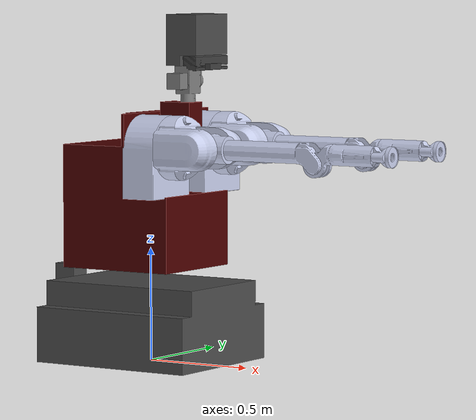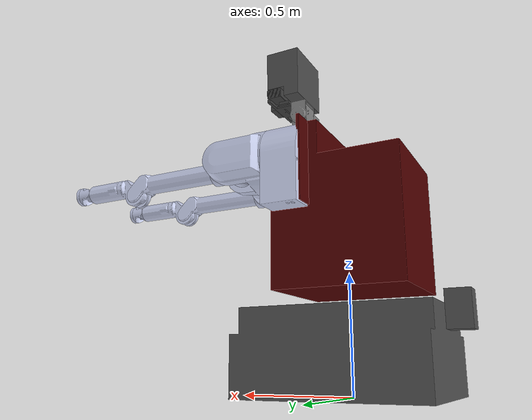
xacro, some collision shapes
<robot xmlns:xacro="http://www.ros.org/wiki/xacro" name="herb">

  <xacro:include filename="herb_base.urdf.xacro"/>
  <xacro:include filename="bh280.urdf.xacro"/>
  <xacro:include filename="bh282.urdf.xacro"/>
  <xacro:include filename="wsg50.urdf.xacro"/>
  <xacro:include filename="wam.urdf.xacro"/>
  <xacro:include filename="fixed_transforms.urdf.xacro"/>

  <!-- 7 DOF Barrett WAM equipped with the Barrett force/torque sensor and
       optionally the BH-280 BarrettHand end-effector. -->
  <xacro:macro name="herb_manipulator"
               params="prefix:=${prefix} bh280:=false bh282:=false wsg50:=false">
    <xacro:wam prefix="${prefix}"/>

    <xacro:if value="${bh280}">
      <xacro:bh280 prefix="${prefix}"/>
    </xacro:if>

    <xacro:if value="${bh282}">
      <xacro:bh282 prefix="${prefix}"/>
    </xacro:if>

    <xacro:if value="${wsg50}">
      <xacro:wsg50 prefix="${prefix}"/>
    </xacro:if>

    <link name="${prefix}/force_torque">
      <inertial>
        <origin xyz="0.0002 0 0.0054" rpy="0 0 0"/>
        <mass value="0.133278"/>
        <inertia ixx="0.00007551" ixy="-0.0000001199" ixz="-0.0000000700"
                 iyy= "0.0000750800" iyz="-0.0000000537"
                 izz= "0.0001462000"/>
      </inertial>
    </link>
    <joint name="${prefix}/force_torque_mount" type="fixed">
      <!-- difference between URDF wam7 frame and Barrett's wam7 frame is 0.06m -->
      <origin xyz="0 0 0.06" rpy="0 0 0"/>
      <parent link="${prefix}/wam7"/>
      <child link="${prefix}/force_torque"/>
    </joint>

    <!-- TODO: where should force/torque thickness go if no hand? -->
    <xacro:if value="${bh280}">
      <joint name="${prefix}/hand_mount" type="fixed">
        <!-- The force/torque sensor is 12 mm thick. -->
        <origin xyz="0 0 0.012" rpy="0 0 ${pi/2}"/>
        <parent link="${prefix}/force_torque"/>
        <child link="${prefix}/hand_base"/>
      </joint>
    </xacro:if>
    <xacro:if value="${bh282}">
      <joint name="${prefix}/hand_mount" type="fixed">
        <!-- The force/torque sensor is 12 mm thick. -->
        <origin xyz="0 0 0.012" rpy="0 0 ${pi/2}"/>
        <parent link="${prefix}/force_torque"/>
        <child link="${prefix}/hand_base"/>
      </joint>
    </xacro:if>
  <xacro:if value="${wsg50}">
      <joint name="${prefix}/hand_mount" type="fixed">
        <!-- The force/torque sensor is 12 mm thick. -->
        <origin xyz="0 0 0.012" rpy="0 0 ${pi/2}"/>
        <parent link="${prefix}/force_torque"/>
        <child link="${prefix}/hand_base"/>
      </joint>
    </xacro:if>
  </xacro:macro>

  <!-- hand arguments should all default to false to make argument passing sane -->
  <xacro:arg name="left_bh280" default="false"/>
  <xacro:arg name="right_bh280" default="false"/>
  <xacro:arg name="left_bh282" default="false"/>
  <xacro:arg name="right_bh282" default="false"/>
  <xacro:arg name="left_wsg50" default="false"/>
  <xacro:arg name="right_wsg50" default="false"/>

  <xacro:herb_manipulator prefix="/left" bh280="$(arg left_bh280)" bh282="$(arg left_bh282)" wsg50="$(arg left_wsg50)"/>
  <xacro:herb_manipulator prefix="/right" bh280="$(arg right_bh280)" bh282="$(arg right_bh282)" wsg50="$(arg right_wsg50)"/>
  <xacro:herb_base prefix=""/>

  <joint name="/left/wam_mount" type="fixed">
    <origin xyz="-0.355924 0.005376 -0.357421" rpy="0 -1.57075 -1.57075"/>
    <parent link="herb_frame"/>
    <child link="/left/wam_base"/>
  </joint>

  <joint name="/right/wam_mount" type="fixed">
    <origin xyz="0.050805 0.005376 -0.357421" rpy="0 -1.57075 -1.57075"/>
    <parent link="herb_frame"/>
    <child link="/right/wam_base"/>
  </joint>

  <xacro:fixed_transforms/>
</robot>

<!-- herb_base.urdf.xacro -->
<robot xmlns:xacro="http://www.ros.org/wiki/xacro" name="herb_base">
  <xacro:macro name="herb_base" params="prefix">
    <link name="base_link">
      <inertial>
        <origin
            xyz="-0.074086 0 -0.051244"
            rpy="0 0 0" />
        <mass
            value="0.1" />
        <inertia
            ixx="1"
            ixy="0"
            ixz="0"
            iyy="1"
            iyz="0"
            izz="1" />
      </inertial>
    </link>
    <joint
        name="root_to_neobotix"
        type="fixed">
      <origin
          xyz="0 0 0"
          rpy="0 0 1.57075" />
      <parent
          link="base_link" />
      <child
          link="neobotix_base" />
    </joint>
    <!--TODO: Confirm the inertial values when deemed important/necessary-->
    <link
        name="neobotix_base">
      <!--check inertias and mass-->
      <inertial>
        <origin
            xyz="0 0 0"
            rpy="0 0 0" />
        <mass
            value="80" />
        <inertia
            ixx="9.25557"
            ixy="0.00548"
            ixz="0.00573"
            iyy="7.60171"
            iyz="1.02901"
            izz="9.76036" />
      </inertial>
      <visual>
        <origin
            xyz="0 0 0"
            rpy="0 0 0"/>
        <geometry>
          <mesh
              filename="package://herb_description/meshes/base/herb_neobotix_base.STL" />
        </geometry>
        <material
            name="">
          <color
              rgba="0.3 0.3 0.3 1" />
        </material>
      </visual>
      <collision>
        <origin
            xyz="0 0 0"
            rpy="1.57075 0 1.57075" />
        <geometry>
          <mesh
              filename="package://herb_description/meshes/base/herb_neobotix_base_collision.STL" />
        </geometry>
      </collision>
    </link>
    <joint
        name="neobotix_to_frame"
        type="fixed">
      <origin
          xyz="0 -0.074086 1.101244"
          rpy="0 0 3.141592" />
      <parent
          link="neobotix_base" />
      <child
          link="herb_frame" />
    </joint>
    <link
        name="herb_frame">
      <!--check inertias and mass-->
      <inertial>
        <origin
            xyz="0 0 0"
            rpy="0 0 0" />
        <mass
            value="106.25" />
        <inertia
            ixx="22.3955"
            ixy="-0.2746"
            ixz="-0.0999"
            iyy="5.9126"
            iyz="5.1995"
            izz="20.4410" />
      </inertial>
      <visual>
        <origin
            xyz="0 0 0"
            rpy="1.57075 0 3.141592" />
        <geometry>
          <mesh
              filename="package://herb_description/meshes/base/herb_frame.STL" />
        </geometry>
        <material
            name="">
          <color
              rgba="0.3 0 0 1" />
        </material>
      </visual>
      <collision>
        <origin
            xyz="0 0 0"
            rpy="1.57075 0 -1.57075" />
        <geometry>
          <mesh
              filename="package://herb_description/meshes/base/herb_frame_collision.STL" />
        </geometry>
      </collision>
    </link>

    <link
        name="neck_pan">
      <!--check inertias and mass-->
      <inertial>
        <origin
            xyz="0 0.124900 0.050806"
            rpy="0 0 0" />
        <mass
            value="0.81" />
        <inertia
            ixx="0.00694"
            ixy="0"
            ixz="0"
            iyy="0.00713"
            iyz="0"
            izz="0.00081" />
      </inertial>
      <visual>
        <origin
            xyz="0 0 0"
            rpy="0 0 0" />
        <geometry>
          <mesh
              filename="package://herb_description/meshes/head/herb_neck_pan.STL" />
        </geometry>
        <material
            name="">
          <color
              rgba="0.5 0.5 0.5 1" />
        </material>
      </visual>
      <collision>
        <origin
            xyz="0 0 0"
            rpy="-1.57075 0 0" />
        <geometry>
          <mesh
              filename="package://herb_description/meshes/head/herb_neck_pan_collision.STL" />
        </geometry>
      </collision>
    </link>
    <joint
        name="frame_to_neck_pan"
        type="revolute">
      <axis
          xyz="0 0 -1" />
      <!--pan (swivel) velocity limit of 360 degrees/s-->
      <limit
          effort="2.0"
          lower="-0.78539"
          upper="0.78539"
          velocity="6.28318" />
      <origin
          xyz="0 0.124900 0.050806"
          rpy="3.141592 0 0" />
      <parent
          link="herb_frame" />
      <child
          link="neck_pan" />
    </joint>
    <link
        name="neck_tilt" >
      <inertial>
        <origin
            xyz="0 0.124900 0.142633"
            rpy="0 0 0" />
        <mass
            value="0.32" />
        <inertia
            ixx="0.00046"
            ixy="0"
            ixz="-0.00002"
            iyy="0.00142"
            iyz="0"
            izz="0.00120" />
      </inertial>
      <visual>
        <origin
            xyz="0 0 0"
            rpy="0 0 0" />
        <geometry>
          <mesh
              filename="package://herb_description/meshes/head/herb_neck_tilt.STL" />
        </geometry>
        <material
            name="">
          <color
              rgba="0.5 0.5 0.5 1" />
        </material>
      </visual>
      <collision>
        <origin
            xyz="0 0 0"
            rpy="-1.57075 0 3.141592" />
        <geometry>
          <mesh
              filename="package://herb_description/meshes/head/herb_neck_tilt_collision.STL" />
        </geometry>
      </collision>
    </link>
    <joint
        name="neck_pan_to_neck_tilt"
        type="revolute">
      <axis
          xyz="-1 0 0" />
      <!--tilt velocity limit of 240 degrees/s-->
      <limit
          effort="12.0"
          lower="-0.78539"
          upper="0.78539"
          velocity="4.18879" />
      <origin
          xyz="0 0 -0.0919"
          rpy="0 0 0" />
      <parent
          link="neck_pan" />
      <child
          link="neck_tilt" />
    </joint>
    <link
        name="crl_head">
      <!--check inertias and mass-->
      <inertial>
        <origin
            xyz="0.001 0.181699 0.377811"
            rpy="0 0 0" />
        <mass
            value="3.01" />
        <inertia
            ixx="0.02735"
            ixy="-0.00053"
            ixz="0.00024"
            iyy="0.00962"
            iyz="-0.00521"
            izz="0.02487" />
      </inertial>
      <visual>
        <origin
            xyz="0 0 0"
            rpy="0 0 0" />
        <geometry>
          <mesh
              filename="package://herb_description/meshes/head/herb_crl_head.STL" />
        </geometry>
        <material
            name="">
          <color
              rgba="0.3 0.3 0.3 1" />
        </material>
      </visual>
      <collision>
        <origin
            xyz="-0.003895 -0.236 0.0575"
            rpy="0 3.141592 0" />
        <geometry>
          <mesh
              filename="package://herb_description/meshes/head/herb_crl_head_collision.STL" />
        </geometry>
      </collision>
    </link>
    <joint
        name="neck_tilt_to_crl_head"
        type="fixed">
      <parent
          link="neck_tilt" />
      <child
          link="crl_head" />
      <origin
          xyz="-0.003895 -0.0575 -0.236"
          rpy="-1.57075 0 0" />
    </joint>
    <link name="multisense/head">
      <inertial>
        <origin
            xyz="0 0 0"
            rpy="0 0 0" />
        <mass
            value="0.1" />
        <inertia
            ixx="1"
            ixy="0"
            ixz="0"
            iyy="1"
            iyz="0"
            izz="1" />
      </inertial>
    </link>
    <joint
        name="crl_head_to_multisenseframe"
        type="fixed">
      <parent
          link="crl_head" />
      <child
          link="multisense/head" />
      <origin
          xyz="0 -0.086 -0.056"
          rpy="0 1.5707 1.5707" />
    </joint>
    <link
        name="head/kinect2_link">
      <inertial>
        <origin
            xyz="0.001778 0.164443 0.209049"
            rpy="0 0 0" />
        <mass
            value="0.63"/>
        <inertia
            ixx="0.00272"
            ixy="0.00036"
            ixz="-0.00002"
            iyy="0.00258"
            iyz="-0.00001"
            izz="0.00145" />
      </inertial>
      <visual>
        <origin
            xyz="0 0 0"
            rpy="0 0 0" />
        <geometry>
          <mesh
              filename="package://herb_description/meshes/head/herb_kinect.STL" />
        </geometry>
        <material
            name="">
          <color
              rgba="0.25 0.25 0.25 1" />
        </material>
      </visual>
      <collision>
        <origin
            xyz="-0.039543 -0.065 0"
            rpy="1.57075 1.57075 1.57075" />
        <geometry>
          <mesh
              filename="package://herb_description/meshes/head/herb_kinect_collision.STL" />
        </geometry>
      </collision>
    </link>
    <joint
        name="crl_head_to_kinect"
        type="fixed">
      <parent
          link="crl_head" />
      <child
          link="head/kinect2_link" />
      <origin
          xyz="-0.003895 -0.170163 0.017938"
          rpy="0 1.57075 0" />
    </joint>
    <xacro:property name="d435_cam_width" value="0.090"/>
    <xacro:property name="d435_cam_height" value="0.025"/>
    <xacro:property name="d435_cam_depth" value="0.02505"/>
    <xacro:property name="M_PI" value="3.1415926535897931" />
    <xacro:property name="d435_cam_mount_from_center_offset" value="0.0149"/>
    <xacro:property name="d435_cam_depth_py" value="0.0175"/>
    <link
      name="camera_link">
      <origin xyz="${d435_cam_mount_from_center_offset} ${-d435_cam_depth_py} 0" rpy="0 0 0"/>
      <mass value="0.79"/>
      <inertia ixx="0.003881243" ixy="0.0" ixz="0.0" iyy="0.000498940" iyz="0.0" izz="0.003879257" />
      <visual>
        <origin
          xyz="0 0 0"
          rpy="1.5707 0 1.5707" />
        <geometry>
          <mesh
            filename="package://herb_description/meshes/head/realsense.dae" />
        </geometry>
        <material name="">
          <color rgba="0.25 0.25 0.25 1" />
        </material>
      </visual>
      <collision>
        <origin xyz="0 0 0" rpy="0 0 0"/>
        <geometry>
          <box size="${d435_cam_depth} ${d435_cam_width} ${d435_cam_height}"/>
        </geometry>
      </collision>
    </link>
    <joint
      name="crl_head_to_realsense"
      type="fixed">
      <parent link="crl_head" />
      <child link="camera_link" />
      <origin
        xyz="0.008 -0.1690163 -0.0765607"
        rpy="0 1.5707 1.5707" />
    </joint>
  </xacro:macro>
</robot>

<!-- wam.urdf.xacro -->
<robot xmlns:xacro="http://www.ros.org/wiki/xacro" name="wam">
  <xacro:macro name="wam" params="prefix">
    <link name="${prefix}/wam_base">
      <visual>
        <origin xyz="0 0 0" rpy="0 0 0"/>
        <geometry>
          <mesh filename="package://herb_description/meshes/wam/wam_base.dae"/>
        </geometry>
        <material name="">
          <color rgba="0.792156862745098 0.819607843137255 0.933333333333333 1"/>
        </material>
      </visual>
      <inertial>
        <origin rpy="0 0 0" xyz="0.21556578 0.26189039 0.34533511"/>
        <mass value="9.97059584"/>
        <inertia
            ixx="0.10916849" ixy="0.00640270" ixz="0.02557874"
            iyx="0.00000000" iyy="0.18294303" iyz="0.00161433"
            izx="0.00000000" izy="0.00000000" izz="0.11760385"/>
      </inertial>
      <collision>
        <geometry><mesh filename="package://herb_description/meshes/wam/wam_base_collision.STL"/>
        </geometry>
      </collision>
    </link>
    <link name="${prefix}/wam1">
      <visual>
        <origin xyz="0 0 0" rpy="0 0 0"/>
        <geometry>
          <mesh filename="package://herb_description/meshes/wam/wam1.dae"/>
        </geometry>
        <material name="">
          <color rgba="0.792156862745098 0.819607843137255 0.933333333333333 1"/>
        </material>
      </visual>
      <inertial>
        <origin rpy="-1.570796 0 0" xyz="-0.004434 -0.000665 -0.121890"/>
        <mass value="10.76768767"/>
        <inertia
            ixx="0.13488033" ixy="-0.00213041" ixz="-0.00012485"
            iyx="0.00000000" iyy="0.11328369" iyz="0.00068555"
            izx="0.00000000" izy="0.00000000" izz="0.09046330"/>
      </inertial>
      <collision>
        <geometry>
          <mesh filename="package://herb_description/meshes/wam/wam1_collision.STL"/>
        </geometry>
      </collision>
    </link>
    <joint name="${prefix}/j1" type="revolute">
      <origin xyz="0.22 0.14 0.346" rpy="-1.1127E-16 0 0"/>
      <parent link="${prefix}/wam_base"/>
      <child link="${prefix}/wam1"/>
      <axis xyz="0 0 1"/>
      <!-- HERB's J1 joints are modified to have a +180 degree offset. -->
      <limit effort="1.8" lower="0.54159265359" upper="5.74159265359" velocity="0.75"/>
    </joint>
    <link name="${prefix}/wam2">
      <visual>
        <origin xyz="0 0 0" rpy="0 0 0"/>
        <geometry>
          <mesh filename="package://herb_description/meshes/wam/wam2.dae"/>
        </geometry>
        <material name="">
          <color rgba="0.792156862745098 0.819607843137255 0.933333333333333 1"/>
        </material>
      </visual>
      <inertial>
        <origin rpy="1.570796 0 0" xyz="-0.002370 -0.015421 0.031056"/>
        <mass value="3.87493756"/>
        <inertia
            ixx="0.02140958" ixy="0.00027172" ixz="0.00002461"
            iyx="0.00000000" iyy="0.01377875" iyz="-0.00181920"
            izx="0.00000000" izy="0.00000000" izz="0.01558906"/>
      </inertial>
      <collision>
        <geometry>
          <mesh filename="package://herb_description/meshes/wam/wam2_collision.STL"/>
        </geometry>
      </collision>
    </link>
    <joint name="${prefix}/j2" type="revolute">
      <origin xyz="0 0 0" rpy="-1.5708 -4.0281E-16 -3.9443E-31"/>
      <parent link="${prefix}/wam1"/>
      <child link="${prefix}/wam2"/>
      <axis xyz="0 0 1"/>
      <limit effort="1.8" lower="-2.00" upper="2.00" velocity="0.75"/>
    </joint>
    <link name="${prefix}/wam3">
      <visual>
        <origin xyz="0 0 0" rpy="0 0 0"/>
        <geometry>
          <mesh filename="package://herb_description/meshes/wam/wam3.dae"/>
        </geometry>
        <material name="">
          <color rgba="0.792156862745098 0.819607843137255 0.933333333333333 1"/>
        </material>
      </visual>
      <inertial>
        <origin rpy="-1.570796 0 0" xyz="0.006741 0.000033 0.342492"/>
        <mass value="1.80228141"/>
        <inertia
            ixx="0.05911077" ixy="-0.00249612" ixz="0.00000738"
            iyx="0.00000000" iyy="0.00324550"  iyz="-0.00001767"
            izx="0.00000000" izy="0.00000000"  izz="0.05927043"/>
      </inertial>
      <collision>
        <geometry>
          <mesh filename="package://herb_description/meshes/wam/wam3_collision.STL"/>
        </geometry>
      </collision>
    </link>
    <joint name="${prefix}/j3" type="revolute">
      <origin xyz="0 0 0" rpy="1.5708 -3.9443E-31 4.0281E-16"/>
      <parent link="${prefix}/wam2"/>
      <child link="${prefix}/wam3"/>
      <axis xyz="0 0 1"/>
      <limit effort="1.8" lower="-2.80" upper="2.80" velocity="2.0"/>
    </joint>
    <link name="${prefix}/wam4">
      <visual>
        <origin xyz="0 0 0" rpy="0 0 0"/>
        <geometry>
          <mesh filename="package://herb_description/meshes/wam/wam4.dae"/>
        </geometry>
        <material name="">
          <color rgba="0.792156862745098 0.819607843137255 0.933333333333333 1"/>
        </material>
      </visual>
      <inertial>
        <origin rpy="1.570796 0 0" xyz="-0.040015 -0.132717 -0.000229"/>
        <mass value="2.40016804"/>
        <inertia
            ixx="0.01491672" ixy="0.00001741" ixz="-0.00150604"
            iyx="0.00000000" iyy="0.01482922" iyz="-0.00002109"
            izx="0.00000000" izy="0.00000000" izz="0.00294463"/>
      </inertial>
      <collision>
        <geometry>
          <mesh filename="package://herb_description/meshes/wam/wam4_collision.STL"/>
        </geometry>
      </collision>
    </link>
    <joint name="${prefix}/j4" type="revolute">
      <origin xyz="0.045 0 0.55" rpy="-1.5708 0 0"/>
      <parent link="${prefix}/wam3"/>
      <child link="${prefix}/wam4"/>
      <axis xyz="0 0 1"/>
      <limit effort="1.6" lower="-0.90" upper="3.10" velocity="2.0"/>
    </joint>
    <link name="${prefix}/wam5">
      <visual>
        <origin xyz="0 0 0" rpy="0 0 0"/>
        <geometry>
          <mesh filename="package://herb_description/meshes/wam/wam5.dae"/>
        </geometry>
        <material name="">
          <color rgba="0.792156862745098 0.819607843137255 0.933333333333333 1"/>
        </material>
      </visual>
      <inertial>
        <origin rpy="-1.570796 0 0" xyz="0.000089 0.004358 0.294888"/>
        <mass value="0.12376019"/>
        <inertia
            ixx="0.00005029" ixy="0.00000020" ixz="-0.00000005"
            iyx="0.00000000" iyy="0.00007582" iyz="-0.00000359"
            izx="0.00000000" izy="0.00000000" izz="0.00006270"/>
      </inertial>
      <collision>
        <geometry>
          <mesh filename="package://herb_description/meshes/wam/wam5_collision.STL"/>
        </geometry>
      </collision>
    </link>
    <joint name="${prefix}/j5" type="revolute">
      <origin xyz="-0.045 0 0" rpy="1.5708 0 0"/>
      <parent link="${prefix}/wam4"/>
      <child link="${prefix}/wam5"/>
      <axis xyz="0 0 1"/>
      <limit effort="0.6" lower="-4.76" upper="1.24" velocity="2.5"/>
    </joint>
    <link name="${prefix}/wam6">
      <visual>
        <origin xyz="0 0 0" rpy="0 0 0"/>
        <geometry>
          <mesh filename="package://herb_description/meshes/wam/wam6.dae"/>
        </geometry>
        <material name="">
          <color rgba="0.792156862745098 0.819607843137255 0.933333333333333 1"/>
        </material>
      </visual>
      <inertial>
        <origin rpy="1.570796 0 0" xyz="-0.000123 -0.024683 -0.017032"/>
        <mass value="0.41797364"/>
        <inertia
            ixx="0.00055516" ixy="0.00000061" ixz="-0.00000074"
            iyx="0.00000000" iyy="0.00024367" iyz="-0.00004590"
            izx="0.00000000" izy="0.00000000" izz="0.00045358"/>
      </inertial>
      <collision>
        <geometry>
          <mesh filename="package://herb_description/meshes/wam/wam6_collision.STL"/>
        </geometry>
      </collision>
    </link>
    <joint name="${prefix}/j6" type="revolute">
      <origin xyz="0 0 0.3" rpy="-1.5708 0 0"/>
      <parent link="${prefix}/wam5"/>
      <child link="${prefix}/wam6"/>
      <axis xyz="0 0 1"/>
      <limit effort="0.6" lower="-1.60" upper="1.60" velocity="2.5"/>
    </joint>
    <link name="${prefix}/wam7">
      <visual>
        <origin xyz="0 0 0" rpy="0 0 0"/>
        <geometry>
          <mesh filename="package://herb_description/meshes/wam/wam7.dae"/>
        </geometry>
        <material name="">
          <color rgba="0.792156862745098 0.819607843137255 0.933333333333333 1"/>
        </material>
      </visual>
      <inertial>
        <origin rpy="0 0 0" xyz="-0.000080 0.000163 0.056764"/>
        <mass value="0.06864753"/>
        <inertia
            ixx="0.00003773" ixy="-0.00000019" ixz="0.00000000"
            iyx="0.00000000" iyy="0.00003806"  iyz="0.00000000"
            izx="0.00000000" izy="0.00000000"  izz="0.00007408"/>
      </inertial>
      <collision>
        <geometry>
          <mesh filename="package://herb_description/meshes/wam/wam7_collision.STL"/>
        </geometry>
      </collision>
    </link>
    <joint name="${prefix}/j7" type="revolute">
      <origin xyz="0 0 0" rpy="1.5708 0 0"/>
      <parent link="${prefix}/wam6"/>
      <child link="${prefix}/wam7"/>
      <axis xyz="0 0 1"/>
      <limit effort="0.174" lower="-3.00" upper="3.00" velocity="2.5"/>
    </joint>
  </xacro:macro>
</robot>
